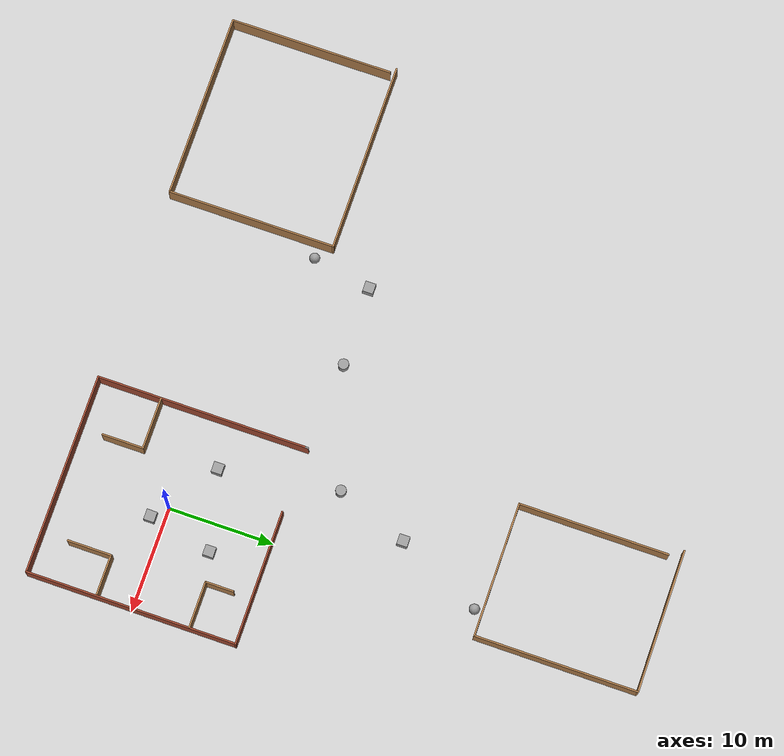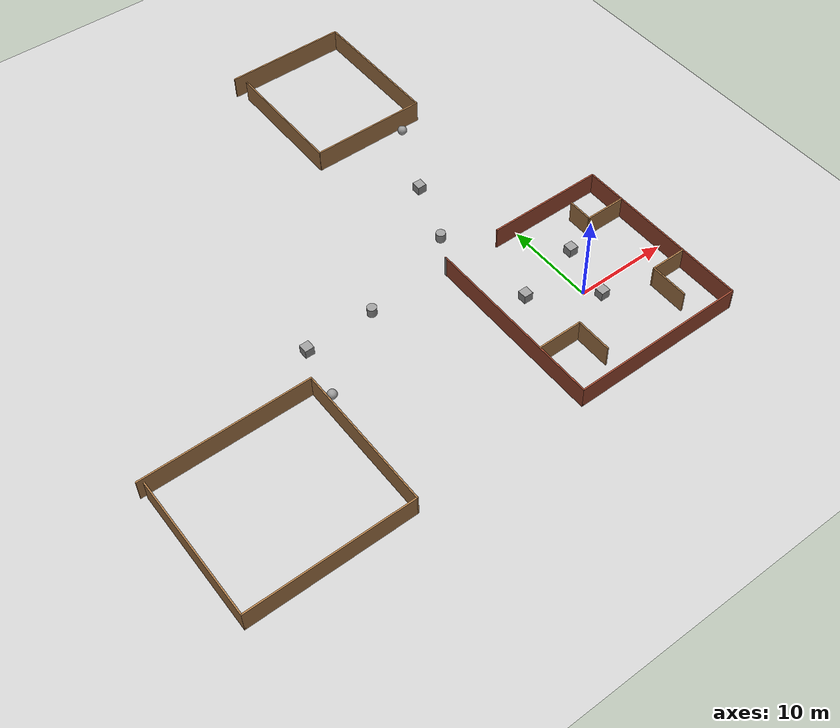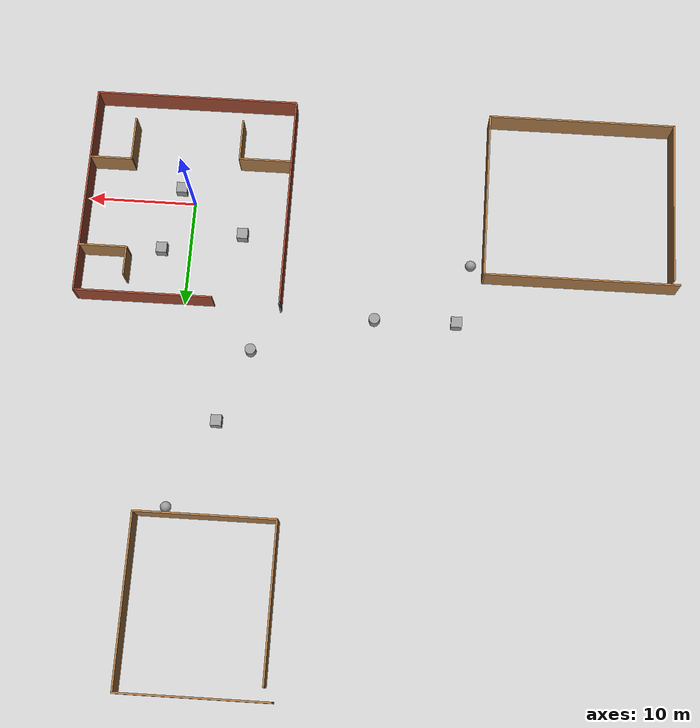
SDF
<sdf version="1.7">
 <world name="default">
  <light name="sun" type="directional">
   <pose>0 0 10 0 -0 0</pose>
   <diffuse>0.8 0.8 0.8 1</diffuse>
   <specular>0.2 0.2 0.2 1</specular>
   <attenuation>
    <range>1000</range>
    <constant>0.9</constant>
    <linear>0.01</linear>
    <quadratic>0.001</quadratic>
   </attenuation>
   <direction>-0.5 0.1 -0.9</direction>
   <spot><inner_angle>0</inner_angle><outer_angle>0</outer_angle><falloff>0</falloff></spot>
  </light>
  <model name="ground_plane">
   <static>1</static>
   <link name="link">
    <collision name="collision">
     <geometry><plane><normal>0 0 1</normal><size>100 100</size></plane></geometry>
     <surface>
      <contact><collide_bitmask>65535</collide_bitmask></contact>
      <friction><ode><mu>100</mu><mu2>50</mu2></ode></friction>
     </surface>
    </collision>
    <visual name="visual">
     <cast_shadows>0</cast_shadows>
     <geometry><plane><normal>0 0 1</normal><size>100 100</size></plane></geometry>
     <material>
      <script><uri>file://media/materials/scripts/gazebo.material</uri><name>Gazebo/Grey</name></script>
     </material>
    </visual>
   </link>
  </model>
  <gravity>0 0 -9.8</gravity>
  <magnetic_field>6e-06 2.3e-05 -4.2e-05</magnetic_field>
  <atmosphere type="adiabatic"/>
  <physics type="ode">
   <max_step_size>0.001</max_step_size>
   <real_time_factor>1</real_time_factor>
   <real_time_update_rate>1000</real_time_update_rate>
  </physics>
  <scene><ambient>0.4 0.4 0.4 1</ambient><background>0.7 0.7 0.7 1</background><shadows>1</shadows></scene>
  <spherical_coordinates>
   <surface_model>EARTH_WGS84</surface_model>
   <latitude_deg>0</latitude_deg>
   <longitude_deg>0</longitude_deg>
   <elevation>0</elevation>
   <heading_deg>0</heading_deg>
  </spherical_coordinates>
  <model name="uniworld">
   <pose>-866.621 -223.809 0 0 -0 0</pose>
   <link name="Wall_1">
    <collision name="Wall_1_Collision">
     <geometry><box><size>261.5 0.15 2.5</size></box></geometry>
     <pose>0 0 1.25 0 -0 0</pose>
    </collision>
    <visual name="Wall_1_Visual">
     <pose>0 0 1.25 0 -0 0</pose>
     <geometry><box><size>261.5 0.15 2.5</size></box></geometry>
     <material>
      <script><uri>file://media/materials/scripts/gazebo.material</uri><name>Gazebo/Grey</name></script>
      <ambient>1 1 1 1</ambient>
     </material>
     <meta><layer>0</layer></meta>
    </visual>
    <pose>-784.084 -176.555 0 0 -0 0.785398</pose>
   </link>
   <link name="Wall_14">
    <collision name="Wall_14_Collision">
     <geometry><box><size>4 0.15 2.5</size></box></geometry>
     <pose>0 0 1.25 0 -0 0</pose>
    </collision>
    <visual name="Wall_14_Visual">
     <pose>0 0 1.25 0 -0 0</pose>
     <geometry><box><size>4 0.15 2.5</size></box></geometry>
     <material>
      <script><uri>file://media/materials/scripts/gazebo.material</uri><name>Gazebo/Wood</name></script>
      <ambient>1 1 1 1</ambient>
     </material>
     <meta><layer>0</layer></meta>
    </visual>
    <pose>874.571 220.573 0 0 -0 3.14159</pose>
   </link>
   <link name="Wall_15">
    <collision name="Wall_15_Collision">
     <geometry><box><size>4.25 0.15 2.5</size></box></geometry>
     <pose>0 0 1.25 0 -0 0</pose>
    </collision>
    <visual name="Wall_15_Visual">
     <pose>0 0 1.25 0 -0 0</pose>
     <geometry><box><size>4.25 0.15 2.5</size></box></geometry>
     <material>
      <script><uri>file://media/materials/scripts/gazebo.material</uri><name>Gazebo/Wood</name></script>
      <ambient>1 1 1 1</ambient>
     </material>
     <meta><layer>0</layer></meta>
    </visual>
    <pose>872.646 218.523 0 0 -0 -1.5708</pose>
   </link>
   <link name="Wall_153">
    <collision name="Wall_153_Collision">
     <geometry><box><size>15.5 0.15 2.5</size></box></geometry>
     <pose>0 0 1.25 0 -0 0</pose>
    </collision>
    <visual name="Wall_153_Visual">
     <pose>0 0 1.25 0 -0 0</pose>
     <geometry><box><size>15.5 0.15 2.5</size></box></geometry>
     <material>
      <script><uri>file://media/materials/scripts/gazebo.material</uri><name>Gazebo/Wood</name></script>
      <ambient>1 1 1 1</ambient>
     </material>
     <meta><layer>0</layer></meta>
    </visual>
    <pose>821.876 221.838 0 0 -0 -1.5708</pose>
   </link>
   <link name="Wall_154">
    <collision name="Wall_154_Collision">
     <geometry><box><size>17.5 0.15 2.5</size></box></geometry>
     <pose>0 0 1.25 0 -0 0</pose>
    </collision>
    <visual name="Wall_154_Visual">
     <pose>0 0 1.25 0 -0 0</pose>
     <geometry><box><size>17.5 0.15 2.5</size></box></geometry>
     <material>
      <script><uri>file://media/materials/scripts/gazebo.material</uri><name>Gazebo/Wood</name></script>
      <ambient>1 1 1 1</ambient>
     </material>
     <meta><layer>0</layer></meta>
    </visual>
    <pose>830.551 214.163 0 0 -0 0</pose>
   </link>
   <link name="Wall_155">
    <collision name="Wall_155_Collision">
     <geometry><box><size>16 0.15 2.5</size></box></geometry>
     <pose>0 0 1.25 0 -0 0</pose>
    </collision>
    <visual name="Wall_155_Visual">
     <pose>0 0 1.25 0 -0 0</pose>
     <geometry><box><size>16 0.15 2.5</size></box></geometry>
     <material>
      <script><uri>file://media/materials/scripts/gazebo.material</uri><name>Gazebo/Wood</name></script>
      <ambient>1 1 1 1</ambient>
     </material>
     <meta><layer>0</layer></meta>
    </visual>
    <pose>839.226 222.088 0 0 -0 1.5708</pose>
   </link>
   <link name="Wall_156">
    <collision name="Wall_156_Collision">
     <geometry><box><size>18 0.15 2.5</size></box></geometry>
     <pose>0 0 1.25 0 -0 0</pose>
    </collision>
    <visual name="Wall_156_Visual">
     <pose>0 0 1.25 0 -0 0</pose>
     <geometry><box><size>18 0.15 2.5</size></box></geometry>
     <material>
      <script><uri>file://media/materials/scripts/gazebo.material</uri><name>Gazebo/Wood</name></script>
      <ambient>1 1 1 1</ambient>
     </material>
     <meta><layer>0</layer></meta>
    </visual>
    <pose>830.301 230.013 0 0 -0 3.14159</pose>
   </link>
   <link name="Wall_17">
    <collision name="Wall_17_Collision">
     <geometry><box><size>4.5 0.15 2.5</size></box></geometry>
     <pose>0 0 1.25 0 -0 0</pose>
    </collision>
    <visual name="Wall_17_Visual">
     <pose>0 0 1.25 0 -0 0</pose>
     <geometry><box><size>4.5 0.15 2.5</size></box></geometry>
     <material>
      <script><uri>file://media/materials/scripts/gazebo.material</uri><name>Gazebo/Wood</name></script>
      <ambient>1 1 1 1</ambient>
     </material>
     <meta><layer>0</layer></meta>
    </visual>
    <pose>874.321 229.381 0 0 -0 3.14159</pose>
   </link>
   <link name="Wall_18">
    <collision name="Wall_18_Collision">
     <geometry><box><size>2.75 0.15 2.5</size></box></geometry>
     <pose>0 0 1.25 0 -0 0</pose>
    </collision>
    <visual name="Wall_18_Visual">
     <pose>0 0 1.25 0 -0 0</pose>
     <geometry><box><size>2.75 0.15 2.5</size></box></geometry>
     <material>
      <script><uri>file://media/materials/scripts/gazebo.material</uri><name>Gazebo/Wood</name></script>
      <ambient>1 1 1 1</ambient>
     </material>
     <meta><layer>0</layer></meta>
    </visual>
    <pose>872.146 230.681 0 0 -0 1.5708</pose>
   </link>
   <link name="Wall_20">
    <collision name="Wall_20_Collision">
     <geometry><box><size>5 0.15 2.5</size></box></geometry>
     <pose>0 0 1.25 0 -0 0</pose>
    </collision>
    <visual name="Wall_20_Visual">
     <pose>0 0 1.25 0 -0 0</pose>
     <geometry><box><size>5 0.15 2.5</size></box></geometry>
     <material>
      <script><uri>file://media/materials/scripts/gazebo.material</uri><name>Gazebo/Wood</name></script>
      <ambient>1 1 1 1</ambient>
     </material>
     <meta><layer>0</layer></meta>
    </visual>
    <pose>860.109 219.957 0 0 -0 0</pose>
   </link>
   <link name="Wall_21">
    <collision name="Wall_21_Collision">
     <geometry><box><size>4 0.15 2.5</size></box></geometry>
     <pose>0 0 1.25 0 -0 0</pose>
    </collision>
    <visual name="Wall_21_Visual">
     <pose>0 0 1.25 0 -0 0</pose>
     <geometry><box><size>4 0.15 2.5</size></box></geometry>
     <material>
      <script><uri>file://media/materials/scripts/gazebo.material</uri><name>Gazebo/Wood</name></script>
      <ambient>1 1 1 1</ambient>
     </material>
     <meta><layer>0</layer></meta>
    </visual>
    <pose>862.534 218.032 0 0 -0 -1.5708</pose>
   </link>
   <link name="Wall_23">
    <collision name="Wall_23_Collision">
     <geometry><box><size>14.25 0.15 2.5</size></box></geometry>
     <pose>0 0 1.25 0 -0 0</pose>
    </collision>
    <visual name="Wall_23_Visual">
     <pose>0 0 1.25 0 -0 0</pose>
     <geometry><box><size>14.25 0.15 2.5</size></box></geometry>
     <material>
      <script><uri>file://media/materials/scripts/gazebo.material</uri><name>Gazebo/Wood</name></script>
      <ambient>1 1 1 1</ambient>
     </material>
     <meta><layer>0</layer></meta>
    </visual>
    <pose>856.271 260.688 0 0 -0 -1.5708</pose>
   </link>
   <link name="Wall_24">
    <collision name="Wall_24_Collision">
     <geometry><box><size>12.75 0.15 2.5</size></box></geometry>
     <pose>0 0 1.25 0 -0 0</pose>
    </collision>
    <visual name="Wall_24_Visual">
     <pose>0 0 1.25 0 -0 0</pose>
     <geometry><box><size>12.75 0.15 2.5</size></box></geometry>
     <material>
      <script><uri>file://media/materials/scripts/gazebo.material</uri><name>Gazebo/Wood</name></script>
      <ambient>1 1 1 1</ambient>
     </material>
     <meta><layer>0</layer></meta>
    </visual>
    <pose>862.571 253.638 0 0 -0 0</pose>
   </link>
   <link name="Wall_25">
    <collision name="Wall_25_Collision">
     <geometry><box><size>15.5 0.15 2.5</size></box></geometry>
     <pose>0 0 1.25 0 -0 0</pose>
    </collision>
    <visual name="Wall_25_Visual">
     <pose>0 0 1.25 0 -0 0</pose>
     <geometry><box><size>15.5 0.15 2.5</size></box></geometry>
     <material>
      <script><uri>file://media/materials/scripts/gazebo.material</uri><name>Gazebo/Wood</name></script>
      <ambient>1 1 1 1</ambient>
     </material>
     <meta><layer>0</layer></meta>
    </visual>
    <pose>868.871 261.313 0 0 -0 1.5708</pose>
   </link>
   <link name="Wall_26">
    <collision name="Wall_26_Collision">
     <geometry><box><size>13.5 0.15 2.5</size></box></geometry>
     <pose>0 0 1.25 0 -0 0</pose>
    </collision>
    <visual name="Wall_26_Visual">
     <pose>0 0 1.25 0 -0 0</pose>
     <geometry><box><size>13.5 0.15 2.5</size></box></geometry>
     <material>
      <script><uri>file://media/materials/scripts/gazebo.material</uri><name>Gazebo/Wood</name></script>
      <ambient>1 1 1 1</ambient>
     </material>
     <meta><layer>0</layer></meta>
    </visual>
    <pose>862.196 268.988 0 0 -0 3.14159</pose>
   </link>
   <link name="Wall_4">
    <collision name="Wall_4_Collision">
     <geometry><box><size>0.3 0.15 2.5</size></box></geometry>
     <pose>0 0 1.25 0 -0 0</pose>
    </collision>
    <visual name="Wall_4_Visual">
     <pose>0 0 1.25 0 -0 0</pose>
     <geometry><box><size>0.3 0.15 2.5</size></box></geometry>
     <material>
      <script><uri>file://media/materials/scripts/gazebo.material</uri><name>Gazebo/Grey</name></script>
      <ambient>1 1 1 1</ambient>
     </material>
     <meta><layer>0</layer></meta>
    </visual>
    <pose>857.666 233.934 0 0 -0 1.5708</pose>
   </link>
   <link name="Wall_5">
    <collision name="Wall_5_Collision">
     <geometry><box><size>20.25 0.15 2.5</size></box></geometry>
     <pose>0 0 1.25 0 -0 0</pose>
    </collision>
    <visual name="Wall_5_Visual">
     <pose>0 0 1.25 0 -0 0</pose>
     <geometry><box><size>20.25 0.15 2.5</size></box></geometry>
     <material>
      <script><uri>file://media/materials/scripts/gazebo.material</uri><name>Gazebo/Bricks</name></script>
      <ambient>1 1 1 1</ambient>
     </material>
     <meta><layer>0</layer></meta>
    </visual>
    <pose>857.666 223.959 0 0 -0 -1.5708</pose>
   </link>
   <link name="Wall_6">
    <collision name="Wall_6_Collision">
     <geometry><box><size>19 0.15 2.5</size></box></geometry>
     <pose>0 0 1.25 0 -0 0</pose>
    </collision>
    <visual name="Wall_6_Visual">
     <pose>0 0 1.25 0 -0 0</pose>
     <geometry><box><size>19 0.15 2.5</size></box></geometry>
     <material>
      <script><uri>file://media/materials/scripts/gazebo.material</uri><name>Gazebo/Bricks</name></script>
      <ambient>1 1 1 1</ambient>
     </material>
     <meta><layer>0</layer></meta>
    </visual>
    <pose>867.091 213.909 0 0 -0 0</pose>
   </link>
   <link name="Wall_7">
    <collision name="Wall_7_Collision">
     <geometry><box><size>20 0.15 2.5</size></box></geometry>
     <pose>0 0 1.25 0 -0 0</pose>
    </collision>
    <visual name="Wall_7_Visual">
     <pose>0 0 1.25 0 -0 0</pose>
     <geometry><box><size>20 0.15 2.5</size></box></geometry>
     <material>
      <script><uri>file://media/materials/scripts/gazebo.material</uri><name>Gazebo/Bricks</name></script>
      <ambient>1 1 1 1</ambient>
     </material>
     <meta><layer>0</layer></meta>
    </visual>
    <pose>876.516 223.834 0 0 -0 1.5708</pose>
   </link>
   <link name="Wall_8">
    <collision name="Wall_8_Collision">
     <geometry><box><size>12.75 0.15 2.5</size></box></geometry>
     <pose>0 0 1.25 0 -0 0</pose>
    </collision>
    <visual name="Wall_8_Visual">
     <pose>0 0 1.25 0 -0 0</pose>
     <geometry><box><size>12.75 0.15 2.5</size></box></geometry>
     <material>
      <script><uri>file://media/materials/scripts/gazebo.material</uri><name>Gazebo/Bricks</name></script>
      <ambient>1 1 1 1</ambient>
     </material>
     <meta><layer>0</layer></meta>
    </visual>
    <pose>870.216 233.759 0 0 -0 3.14159</pose>
   </link>
   <static>1</static>
  </model>
  <model name="unit_cylinder">
   <pose>-6.5144 14.1946 0.5 0 -0 0</pose>
   <link name="link">
    <inertial>
     <mass>1</mass>
     <inertia><ixx>0.145833</ixx><ixy>0</ixy><ixz>0</ixz><iyy>0.145833</iyy><iyz>0</iyz><izz>0.125</izz></inertia>
    </inertial>
    <collision name="collision">
     <geometry><cylinder><radius>0.5</radius><length>1</length></cylinder></geometry>
    </collision>
    <visual name="visual">
     <geometry><cylinder><radius>0.5</radius><length>1</length></cylinder></geometry>
     <material>
      <script><name>Gazebo/Grey</name><uri>file://media/materials/scripts/gazebo.material</uri></script>
     </material>
    </visual>
   </link>
  </model>
  <model name="unit_cylinder_0">
   <pose>-17.6146 10.5892 0.5 0 -0 0</pose>
   <link name="link">
    <inertial>
     <mass>1</mass>
     <inertia><ixx>0.145833</ixx><ixy>0</ixy><ixz>0</ixz><iyy>0.145833</iyy><iyz>0</iyz><izz>0.125</izz></inertia>
    </inertial>
    <collision name="collision">
     <geometry><cylinder><radius>0.5</radius><length>1</length></cylinder></geometry>
    </collision>
    <visual name="visual">
     <geometry><cylinder><radius>0.5</radius><length>1</length></cylinder></geometry>
     <material>
      <script><name>Gazebo/Grey</name><uri>file://media/materials/scripts/gazebo.material</uri></script>
     </material>
    </visual>
   </link>
  </model>
  <model name="unit_box">
   <pose>-4.02996 21.0127 0.5 0 -0 0</pose>
   <link name="link">
    <inertial>
     <mass>1</mass>
     <inertia>
      <ixx>0.166667</ixx>
      <ixy>0</ixy>
      <ixz>0</ixz>
      <iyy>0.166667</iyy>
      <iyz>0</iyz>
      <izz>0.166667</izz>
     </inertia>
    </inertial>
    <collision name="collision"><geometry><box><size>1 1 1</size></box></geometry></collision>
    <visual name="visual">
     <geometry><box><size>1 1 1</size></box></geometry>
     <material>
      <script><name>Gazebo/Grey</name><uri>file://media/materials/scripts/gazebo.material</uri></script>
     </material>
    </visual>
   </link>
  </model>
  <model name="unit_box_0">
   <pose>-25.1534 10.4759 0.5 0 -0 0</pose>
   <link name="link">
    <inertial>
     <mass>1</mass>
     <inertia>
      <ixx>0.166667</ixx>
      <ixy>0</ixy>
      <ixz>0</ixz>
      <iyy>0.166667</iyy>
      <iyz>0</iyz>
      <izz>0.166667</izz>
     </inertia>
    </inertial>
    <collision name="collision"><geometry><box><size>1 1 1</size></box></geometry></collision>
    <visual name="visual">
     <geometry><box><size>1 1 1</size></box></geometry>
     <material>
      <script><name>Gazebo/Grey</name><uri>file://media/materials/scripts/gazebo.material</uri></script>
     </material>
    </visual>
   </link>
  </model>
  <model name="unit_box_1">
   <pose>-4.80827 3.0031 0.5 0 -0 0</pose>
   <link name="link">
    <inertial>
     <mass>1</mass>
     <inertia>
      <ixx>0.166667</ixx>
      <ixy>0</ixy>
      <ixz>0</ixz>
      <iyy>0.166667</iyy>
      <iyz>0</iyz>
      <izz>0.166667</izz>
     </inertia>
    </inertial>
    <collision name="collision"><geometry><box><size>1 1 1</size></box></geometry></collision>
    <visual name="visual">
     <geometry><box><size>1 1 1</size></box></geometry>
     <material>
      <script><name>Gazebo/Grey</name><uri>file://media/materials/scripts/gazebo.material</uri></script>
     </material>
    </visual>
   </link>
  </model>
  <model name="unit_box_2">
   <pose>1.29023 -1.28287 0.5 0 -0 0</pose>
   <link name="link">
    <inertial>
     <mass>1</mass>
     <inertia>
      <ixx>0.166667</ixx>
      <ixy>0</ixy>
      <ixz>0</ixz>
      <iyy>0.166667</iyy>
      <iyz>0</iyz>
      <izz>0.166667</izz>
     </inertia>
    </inertial>
    <collision name="collision"><geometry><box><size>1 1 1</size></box></geometry></collision>
    <visual name="visual">
     <geometry><box><size>1 1 1</size></box></geometry>
     <material>
      <script><name>Gazebo/Grey</name><uri>file://media/materials/scripts/gazebo.material</uri></script>
     </material>
    </visual>
   </link>
  </model>
  <model name="unit_box_3">
   <pose>2.59307 4.82602 0.5 0 -0 0</pose>
   <link name="link">
    <inertial>
     <mass>1</mass>
     <inertia>
      <ixx>0.166667</ixx>
      <ixy>0</ixy>
      <ixz>0</ixz>
      <iyy>0.166667</iyy>
      <iyz>0</iyz>
      <izz>0.166667</izz>
     </inertia>
    </inertial>
    <collision name="collision"><geometry><box><size>1 1 1</size></box></geometry></collision>
    <visual name="visual">
     <geometry><box><size>1 1 1</size></box></geometry>
     <material>
      <script><name>Gazebo/Grey</name><uri>file://media/materials/scripts/gazebo.material</uri></script>
     </material>
    </visual>
   </link>
  </model>
  <model name="unit_sphere">
   <pose>-26.2346 4.80384 0.5 0 -0 0</pose>
   <link name="link">
    <inertial>
     <mass>1</mass>
     <inertia><ixx>0.1</ixx><ixy>0</ixy><ixz>0</ixz><iyy>0.1</iyy><iyz>0</iyz><izz>0.1</izz></inertia>
    </inertial>
    <collision name="collision"><geometry><sphere><radius>0.5</radius></sphere></geometry></collision>
    <visual name="visual">
     <geometry><sphere><radius>0.5</radius></sphere></geometry>
     <material>
      <script><name>Gazebo/Grey</name><uri>file://media/materials/scripts/gazebo.material</uri></script>
     </material>
    </visual>
   </link>
  </model>
  <model name="unit_sphere_0">
   <pose>-0.279702 29.0466 0.5 0 -0 0</pose>
   <link name="link">
    <inertial>
     <mass>1</mass>
     <inertia><ixx>0.1</ixx><ixy>0</ixy><ixz>0</ixz><iyy>0.1</iyy><iyz>0</iyz><izz>0.1</izz></inertia>
    </inertial>
    <collision name="collision"><geometry><sphere><radius>0.5</radius></sphere></geometry></collision>
    <visual name="visual">
     <geometry><sphere><radius>0.5</radius></sphere></geometry>
     <material>
      <script><name>Gazebo/Grey</name><uri>file://media/materials/scripts/gazebo.material</uri></script>
     </material>
    </visual>
   </link>
  </model>
 </world>
</sdf>
